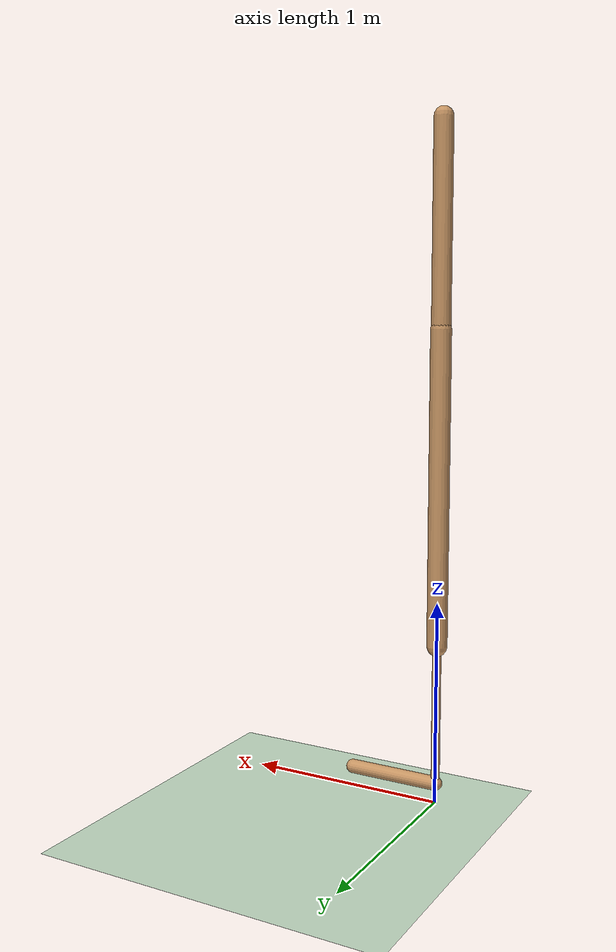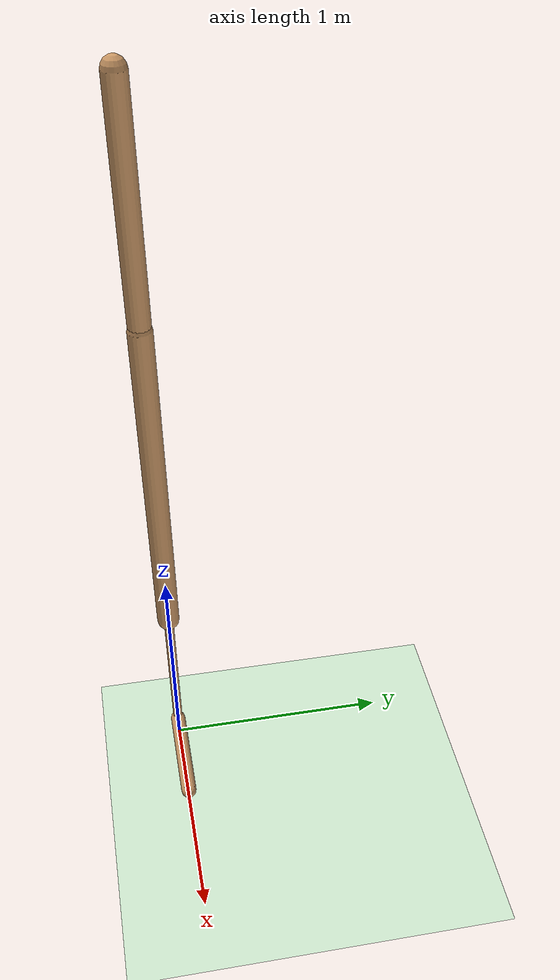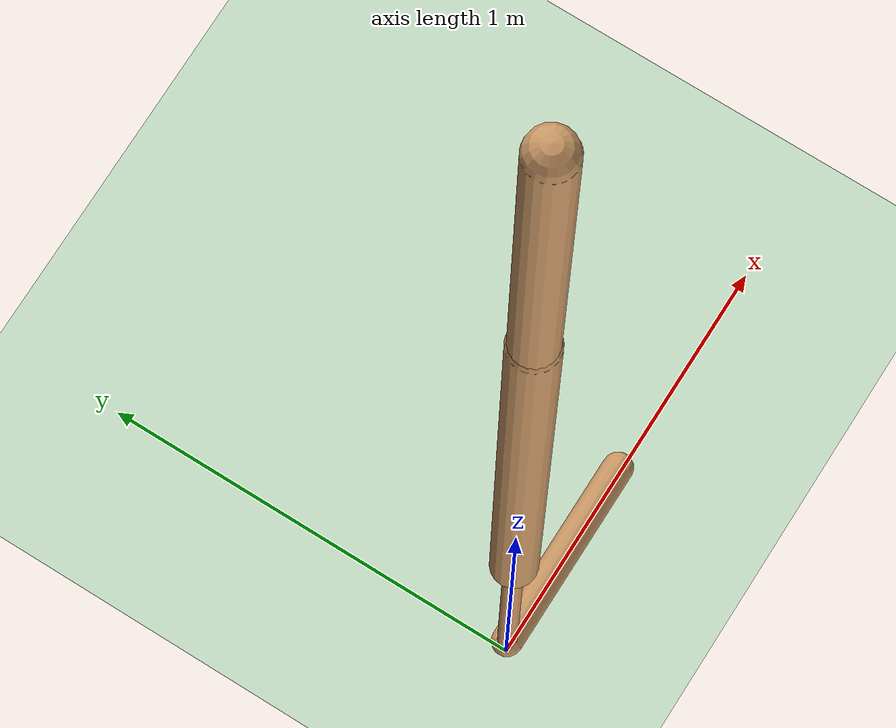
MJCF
<mujoco model="walker2d">
  <compiler angle="degree" inertiafromgeom="true" />
  <default>
    <joint armature="0.01" damping=".1" limited="true" />
    <geom conaffinity="0" condim="3" contype="1" density="1000" friction=".7 .1 .1" rgba="0.8 0.6 .4 1" />
  </default>
  <option integrator="RK4" timestep="0.002" />
  <worldbody>
    <light cutoff="100" diffuse="1 1 1" dir="-0 0 -1.3" directional="true" exponent="1" pos="0 0 1.3" specular=".1 .1 .1" />
    <geom conaffinity="1" condim="3" name="floor" pos="0 0 0" rgba="0.8 0.9 0.8 1" size="40 40 40" type="plane" material="MatPlane" />
    <body name="torso" pos="0 0 2.770285165309906">
      <camera name="track" mode="trackcom" pos="0 -5 -1.25" xyaxes="1 0 0 0 0 1" />
      <joint armature="0" axis="1 0 0" damping="0" limited="false" name="rootx" pos="0 0 -1.25" stiffness="0" type="slide" />
      <joint armature="0" axis="0 0 1" damping="0" limited="false" name="rootz" pos="0 0 -1.25" ref="1.25" stiffness="0" type="slide" />
      <joint armature="0" axis="0 1 0" damping="0" limited="false" name="rooty" pos="0 0 0" stiffness="0" type="hinge" />
      <geom friction="0.9" name="torso_geom" size="0.04615220054984093 0.47314804792404175" type="capsule" />
      <body name="thigh" pos="0 0 -0.47314804792404175">
        <joint axis="0 -1 0" name="thigh_joint" pos="0 0 0" range="-150 0" type="hinge" />
        <site name="torso_thigh_site" pos="0 0 0" size="0.01" type="sphere" rgba="1 0 0 0.5" />
        <geom friction="0.9" pos="0 0 -0.7534648180007935" name="thigh_geom" size="0.04968108981847763 0.7534648180007935" type="capsule" />
        <body name="leg" pos="0 0 -1.8520333766937256">
          <joint axis="0 -1 0" name="leg_joint" pos="0 0 0.34510374069213867" range="-150 0" type="hinge" />
          <site name="thigh_leg_site" pos="0 0 0.25" size="0.01" type="sphere" rgba="1 0 0 0.5" />
          <geom friction="0.9" name="leg_geom" size="0.021600093692541122 0.34510374069213867" type="capsule" />
          <body name="foot" pos="0.45178475975990295 0 -0.44510374069213865">
            <joint axis="0 -1 0" name="foot_joint" pos="-0.45178475975990295 0 0.1" range="-45 45" type="hinge" />
            <site name="leg_foot_site" pos="-0.2 0 0.1" size="0.01" type="sphere" rgba="1 0 0 0.5" />
            <geom friction="0.9" pos="-0.22589237987995148 0 0.1" quat="0.70710678118654757 0 -0.70710678118654746 0" name="foot_geom" size="0.03441314399242401 0.22589237987995148" type="capsule" />
          </body>
        </body>
      </body>

      <body name="thigh_left" pos="0 0 -0.47314804792404175">
        <joint axis="0 -1 0" name="thigh_left_joint" pos="0 0 0" range="-150 0" type="hinge" />
        <site name="torso_thigh_left_site" pos="0 0 0" size="0.01" type="sphere" rgba="1 0 0 0.5" />
        <geom friction="0.9" name="thigh_left_geom" rgba=".7 .3 .6 1" size="0.04968108981847763 0.7534648180007935" pos="0 0 -0.7534648180007935" type="capsule" />
        <body name="leg_left" pos="0 0 -1.8520333766937256">
          <joint axis="0 -1 0" name="leg_left_joint" pos="0 0 0.34510374069213867" range="-150 0" type="hinge" />
          <site name="thigh_leg_left_site" pos="0 0 0.25" size="0.01" type="sphere" rgba="1 0 0 0.5" />
          <geom friction="0.9" name="leg_left_geom" rgba=".7 .3 .6 1" size="0.021600093692541122 0.34510374069213867" type="capsule" />
          <body name="foot_left" pos="0.45178475975990295 0 -0.44510374069213865">
            <joint axis="0 -1 0" name="foot_left_joint" pos="-0.45178475975990295 0 0.1" range="-45 45" type="hinge" />
            <site name="leg_foot_left_site" pos="-0.2 0 0.1" size="0.01" type="sphere" rgba="1 0 0 0.5" />
            <geom friction="1.9" name="foot_left_geom" rgba=".7 .3 .6 1" size="0.03441314399242401 0.22589237987995148" pos="-0.22589237987995148 0 0.1" type="capsule" quat="0.70710678118654757 0 -0.70710678118654746 0" />
          </body>
        </body>
      </body>
    </body>
  </worldbody>
  <actuator>

    <motor ctrllimited="true" ctrlrange="-1.0 1.0" gear="330.61509599587214" joint="thigh_joint" />
    <motor ctrllimited="true" ctrlrange="-1.0 1.0" gear="40.2532495184697" joint="leg_joint" />
    <motor ctrllimited="true" ctrlrange="-1.0 1.0" gear="74.31008935242802" joint="foot_joint" />
    <motor ctrllimited="true" ctrlrange="-1.0 1.0" gear="330.61509599587214" joint="thigh_left_joint" />
    <motor ctrllimited="true" ctrlrange="-1.0 1.0" gear="40.2532495184697" joint="leg_left_joint" />
    <motor ctrllimited="true" ctrlrange="-1.0 1.0" gear="74.31008935242802" joint="foot_left_joint" />

  </actuator>
    <asset>
        <texture type="skybox" builtin="gradient" rgb1=".4 .5 .6" rgb2="0 0 0" width="100" height="100" />
        <texture builtin="flat" height="1278" mark="cross" markrgb="1 1 1" name="texgeom" random="0.01" rgb1="0.8 0.6 0.4" rgb2="0.8 0.6 0.4" type="cube" width="127" />
        <texture builtin="checker" height="100" name="texplane" rgb1="0 0 0" rgb2="0.8 0.8 0.8" type="2d" width="100" />
        <material name="MatPlane" reflectance="0.5" shininess="1" specular="1" texrepeat="60 60" texture="texplane" />
        <material name="geom" texture="texgeom" texuniform="true" />
    </asset>

  <sensor>
    <force site="torso_thigh_site" name="torso_thigh_sensor" />
    <force site="thigh_leg_site" name="thigh_leg_sensor" />
    <force site="leg_foot_site" name="leg_foot_sensor" />
    <force site="torso_thigh_left_site" name="torso_thigh_left_sensor" />
    <force site="thigh_leg_left_site" name="thigh_leg_left_sensor" />
    <force site="leg_foot_left_site" name="leg_foot_left_sensor" />
  </sensor>
</mujoco>
